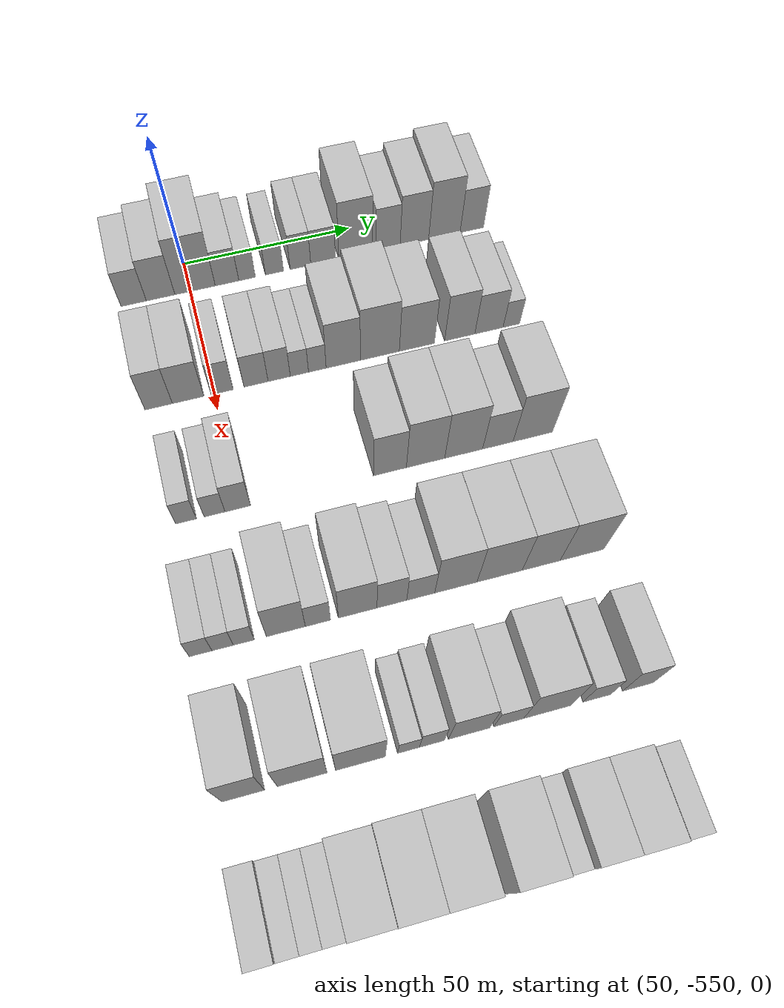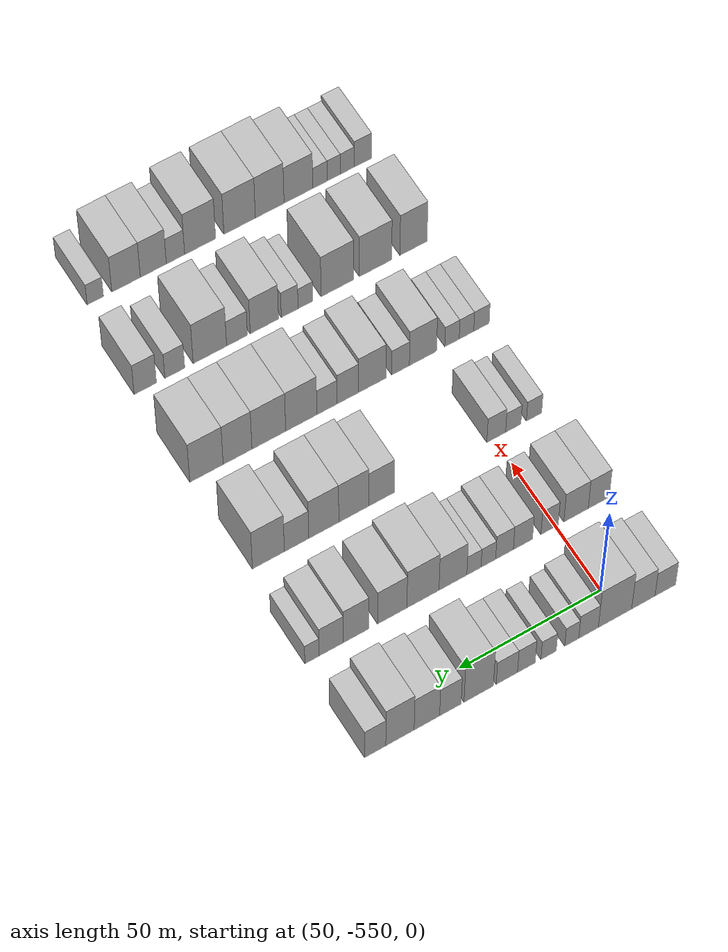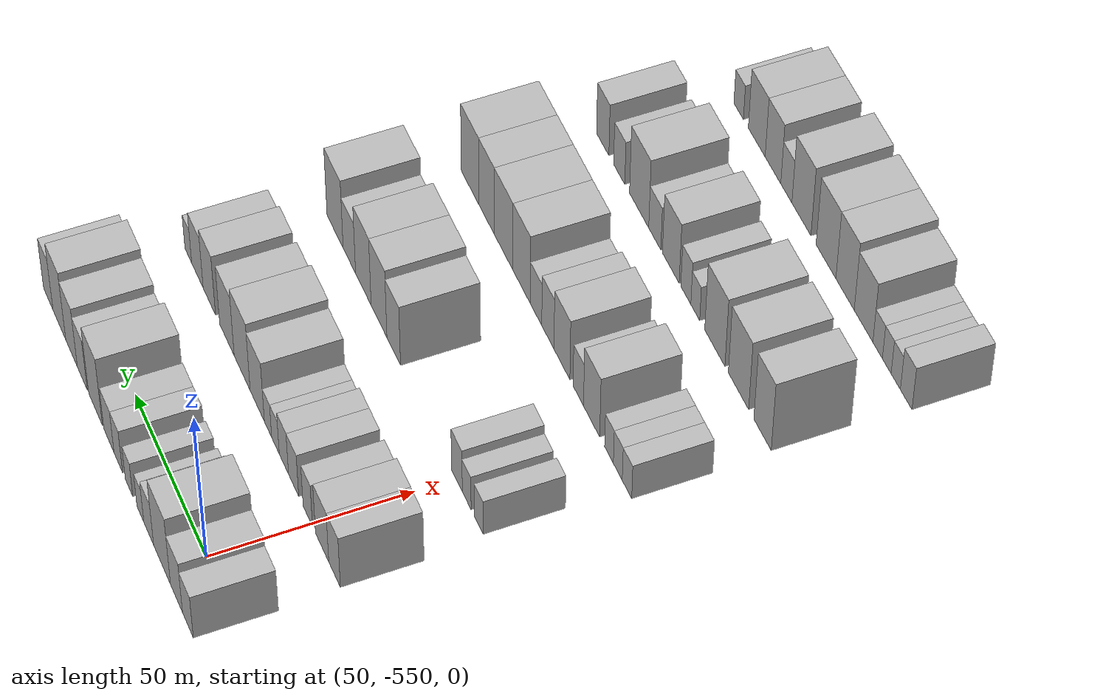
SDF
<sdf version="1.6">
 <world name="default">
  <model name="building_1">
   <static>1</static>
   <pose>50.0000 -566.3373 0 0.000000 0.000000 0.000000</pose>
   <link name="link">
    <pose>0 0 7.50 0 0 0</pose>
    <collision name="collision"><geometry><box><size>20.0000 7.3254 15.0000</size></box></geometry></collision>
    <visual name="visual">
     <cast_shadows>0</cast_shadows>
     <geometry><box><size>20.0000 7.3254 15.0000</size></box></geometry>
     <material>
      <script>
       <uri>model://HANNAS_wall/materials/scripts</uri>
       <uri>model://HANNAS_wall/materials/textures</uri>
       <name>vrc/HANNAS_wall</name>
      </script>
     </material>
    </visual>
   </link>
  </model>
  <model name="building_2">
   <static>1</static>
   <pose>50.0000 -558.5314 0 0.000000 0.000000 0.000000</pose>
   <link name="link">
    <pose>0 0 9.00 0 0 0</pose>
    <collision name="collision"><geometry><box><size>20.0000 8.2865 18.0000</size></box></geometry></collision>
    <visual name="visual">
     <cast_shadows>0</cast_shadows>
     <geometry><box><size>20.0000 8.2865 18.0000</size></box></geometry>
     <material>
      <script>
       <uri>model://HANNAS_wall/materials/scripts</uri>
       <uri>model://HANNAS_wall/materials/textures</uri>
       <name>vrc/HANNAS_wall</name>
      </script>
     </material>
    </visual>
   </link>
  </model>
  <model name="building_3">
   <static>1</static>
   <pose>50.0000 -548.4884 0 0.000000 0.000000 0.000000</pose>
   <link name="link">
    <pose>0 0 12.00 0 0 0</pose>
    <collision name="collision"><geometry><box><size>20.0000 11.7996 24.0000</size></box></geometry></collision>
    <visual name="visual">
     <cast_shadows>0</cast_shadows>
     <geometry><box><size>20.0000 11.7996 24.0000</size></box></geometry>
     <material>
      <script>
       <uri>model://HANNAS_wall/materials/scripts</uri>
       <uri>model://HANNAS_wall/materials/textures</uri>
       <name>vrc/HANNAS_wall</name>
      </script>
     </material>
    </visual>
   </link>
  </model>
  <model name="building_4">
   <static>1</static>
   <pose>50.0000 -539.1193 0 0.000000 0.000000 0.000000</pose>
   <link name="link">
    <pose>0 0 7.50 0 0 0</pose>
    <collision name="collision"><geometry><box><size>20.0000 6.9386 15.0000</size></box></geometry></collision>
    <visual name="visual">
     <cast_shadows>0</cast_shadows>
     <geometry><box><size>20.0000 6.9386 15.0000</size></box></geometry>
     <material>
      <script>
       <uri>model://HANNAS_wall/materials/scripts</uri>
       <uri>model://HANNAS_wall/materials/textures</uri>
       <name>vrc/HANNAS_wall</name>
      </script>
     </material>
    </visual>
   </link>
  </model>
  <model name="building_5">
   <static>1</static>
   <pose>50.0000 -533.2011 0 0.000000 0.000000 0.000000</pose>
   <link name="link">
    <pose>0 0 6.00 0 0 0</pose>
    <collision name="collision"><geometry><box><size>20.0000 4.8977 12.0000</size></box></geometry></collision>
    <visual name="visual">
     <cast_shadows>0</cast_shadows>
     <geometry><box><size>20.0000 4.8977 12.0000</size></box></geometry>
     <material>
      <script>
       <uri>model://HANNAS_wall/materials/scripts</uri>
       <uri>model://HANNAS_wall/materials/textures</uri>
       <name>vrc/HANNAS_wall</name>
      </script>
     </material>
    </visual>
   </link>
  </model>
  <model name="building_6">
   <static>1</static>
   <pose>50.0000 -525.0686 0 0.000000 0.000000 0.000000</pose>
   <link name="link">
    <pose>0 0 6.00 0 0 0</pose>
    <collision name="collision"><geometry><box><size>20.0000 5.3672 12.0000</size></box></geometry></collision>
    <visual name="visual">
     <cast_shadows>0</cast_shadows>
     <geometry><box><size>20.0000 5.3672 12.0000</size></box></geometry>
     <material>
      <script>
       <uri>model://HANNAS_wall/materials/scripts</uri>
       <uri>model://HANNAS_wall/materials/textures</uri>
       <name>vrc/HANNAS_wall</name>
      </script>
     </material>
    </visual>
   </link>
  </model>
  <model name="building_7">
   <static>1</static>
   <pose>50.0000 -517.2954 0 0.000000 0.000000 0.000000</pose>
   <link name="link">
    <pose>0 0 7.50 0 0 0</pose>
    <collision name="collision"><geometry><box><size>20.0000 6.1791 15.0000</size></box></geometry></collision>
    <visual name="visual">
     <cast_shadows>0</cast_shadows>
     <geometry><box><size>20.0000 6.1791 15.0000</size></box></geometry>
     <material>
      <script>
       <uri>model://HANNAS_wall/materials/scripts</uri>
       <uri>model://HANNAS_wall/materials/textures</uri>
       <name>vrc/HANNAS_wall</name>
      </script>
     </material>
    </visual>
   </link>
  </model>
  <model name="building_8">
   <static>1</static>
   <pose>50.0000 -510.4935 0 0.000000 0.000000 0.000000</pose>
   <link name="link">
    <pose>0 0 7.50 0 0 0</pose>
    <collision name="collision"><geometry><box><size>20.0000 7.4247 15.0000</size></box></geometry></collision>
    <visual name="visual">
     <cast_shadows>0</cast_shadows>
     <geometry><box><size>20.0000 7.4247 15.0000</size></box></geometry>
     <material>
      <script>
       <uri>model://HANNAS_wall/materials/scripts</uri>
       <uri>model://HANNAS_wall/materials/textures</uri>
       <name>vrc/HANNAS_wall</name>
      </script>
     </material>
    </visual>
   </link>
  </model>
  <model name="building_9">
   <static>1</static>
   <pose>50.0000 -500.6763 0 0.000000 0.000000 0.000000</pose>
   <link name="link">
    <pose>0 0 12.00 0 0 0</pose>
    <collision name="collision"><geometry><box><size>20.0000 10.2097 24.0000</size></box></geometry></collision>
    <visual name="visual">
     <cast_shadows>0</cast_shadows>
     <geometry><box><size>20.0000 10.2097 24.0000</size></box></geometry>
     <material>
      <script>
       <uri>model://HANNAS_wall/materials/scripts</uri>
       <uri>model://HANNAS_wall/materials/textures</uri>
       <name>vrc/HANNAS_wall</name>
      </script>
     </material>
    </visual>
   </link>
  </model>
  <model name="building_10">
   <static>1</static>
   <pose>50.0000 -490.8525 0 0.000000 0.000000 0.000000</pose>
   <link name="link">
    <pose>0 0 9.00 0 0 0</pose>
    <collision name="collision"><geometry><box><size>20.0000 7.4378 18.0000</size></box></geometry></collision>
    <visual name="visual">
     <cast_shadows>0</cast_shadows>
     <geometry><box><size>20.0000 7.4378 18.0000</size></box></geometry>
     <material>
      <script>
       <uri>model://HANNAS_wall/materials/scripts</uri>
       <uri>model://HANNAS_wall/materials/textures</uri>
       <name>vrc/HANNAS_wall</name>
      </script>
     </material>
    </visual>
   </link>
  </model>
  <model name="building_11">
   <static>1</static>
   <pose>50.0000 -482.7396 0 0.000000 0.000000 0.000000</pose>
   <link name="link">
    <pose>0 0 10.50 0 0 0</pose>
    <collision name="collision"><geometry><box><size>20.0000 8.7881 21.0000</size></box></geometry></collision>
    <visual name="visual">
     <cast_shadows>0</cast_shadows>
     <geometry><box><size>20.0000 8.7881 21.0000</size></box></geometry>
     <material>
      <script>
       <uri>model://HANNAS_wall/materials/scripts</uri>
       <uri>model://HANNAS_wall/materials/textures</uri>
       <name>vrc/HANNAS_wall</name>
      </script>
     </material>
    </visual>
   </link>
  </model>
  <model name="building_12">
   <static>1</static>
   <pose>50.0000 -473.4747 0 0.000000 0.000000 0.000000</pose>
   <link name="link">
    <pose>0 0 12.00 0 0 0</pose>
    <collision name="collision"><geometry><box><size>20.0000 9.7416 24.0000</size></box></geometry></collision>
    <visual name="visual">
     <cast_shadows>0</cast_shadows>
     <geometry><box><size>20.0000 9.7416 24.0000</size></box></geometry>
     <material>
      <script>
       <uri>model://HANNAS_wall/materials/scripts</uri>
       <uri>model://HANNAS_wall/materials/textures</uri>
       <name>vrc/HANNAS_wall</name>
      </script>
     </material>
    </visual>
   </link>
  </model>
  <model name="building_13">
   <static>1</static>
   <pose>50.0000 -464.9641 0 0.000000 0.000000 0.000000</pose>
   <link name="link">
    <pose>0 0 9.00 0 0 0</pose>
    <collision name="collision"><geometry><box><size>20.0000 7.2798 18.0000</size></box></geometry></collision>
    <visual name="visual">
     <cast_shadows>0</cast_shadows>
     <geometry><box><size>20.0000 7.2798 18.0000</size></box></geometry>
     <material>
      <script>
       <uri>model://HANNAS_wall/materials/scripts</uri>
       <uri>model://HANNAS_wall/materials/textures</uri>
       <name>vrc/HANNAS_wall</name>
      </script>
     </material>
    </visual>
   </link>
  </model>
  <model name="building_135">
   <static>1</static>
   <pose>85.0000 -565.2305 0 0.000000 0.000000 0.000000</pose>
   <link name="link">
    <pose>0 0 9.00 0 0 0</pose>
    <collision name="collision"><geometry><box><size>20.0000 7.5390 18.0000</size></box></geometry></collision>
    <visual name="visual">
     <cast_shadows>0</cast_shadows>
     <geometry><box><size>20.0000 7.5390 18.0000</size></box></geometry>
     <material>
      <script>
       <uri>model://HANNAS_wall/materials/scripts</uri>
       <uri>model://HANNAS_wall/materials/textures</uri>
       <name>vrc/HANNAS_wall</name>
      </script>
     </material>
    </visual>
   </link>
  </model>
  <model name="building_136">
   <static>1</static>
   <pose>85.0000 -557.0987 0 0.000000 0.000000 0.000000</pose>
   <link name="link">
    <pose>0 0 9.00 0 0 0</pose>
    <collision name="collision"><geometry><box><size>20.0000 8.7245 18.0000</size></box></geometry></collision>
    <visual name="visual">
     <cast_shadows>0</cast_shadows>
     <geometry><box><size>20.0000 8.7245 18.0000</size></box></geometry>
     <material>
      <script>
       <uri>model://HANNAS_wall/materials/scripts</uri>
       <uri>model://HANNAS_wall/materials/textures</uri>
       <name>vrc/HANNAS_wall</name>
      </script>
     </material>
    </visual>
   </link>
  </model>
  <model name="building_137">
   <static>1</static>
   <pose>85.0000 -547.6555 0 0.000000 0.000000 0.000000</pose>
   <link name="link">
    <pose>0 0 7.50 0 0 0</pose>
    <collision name="collision"><geometry><box><size>20.0000 6.1619 15.0000</size></box></geometry></collision>
    <visual name="visual">
     <cast_shadows>0</cast_shadows>
     <geometry><box><size>20.0000 6.1619 15.0000</size></box></geometry>
     <material>
      <script>
       <uri>model://HANNAS_wall/materials/scripts</uri>
       <uri>model://HANNAS_wall/materials/textures</uri>
       <name>vrc/HANNAS_wall</name>
      </script>
     </material>
    </visual>
   </link>
  </model>
  <model name="building_138">
   <static>1</static>
   <pose>85.0000 -538.1790 0 0.000000 0.000000 0.000000</pose>
   <link name="link">
    <pose>0 0 7.50 0 0 0</pose>
    <collision name="collision"><geometry><box><size>20.0000 6.7912 15.0000</size></box></geometry></collision>
    <visual name="visual">
     <cast_shadows>0</cast_shadows>
     <geometry><box><size>20.0000 6.7912 15.0000</size></box></geometry>
     <material>
      <script>
       <uri>model://HANNAS_wall/materials/scripts</uri>
       <uri>model://HANNAS_wall/materials/textures</uri>
       <name>vrc/HANNAS_wall</name>
      </script>
     </material>
    </visual>
   </link>
  </model>
  <model name="building_139">
   <static>1</static>
   <pose>85.0000 -531.6476 0 0.000000 0.000000 0.000000</pose>
   <link name="link">
    <pose>0 0 7.50 0 0 0</pose>
    <collision name="collision"><geometry><box><size>20.0000 6.2715 15.0000</size></box></geometry></collision>
    <visual name="visual">
     <cast_shadows>0</cast_shadows>
     <geometry><box><size>20.0000 6.2715 15.0000</size></box></geometry>
     <material>
      <script>
       <uri>model://HANNAS_wall/materials/scripts</uri>
       <uri>model://HANNAS_wall/materials/textures</uri>
       <name>vrc/HANNAS_wall</name>
      </script>
     </material>
    </visual>
   </link>
  </model>
  <model name="building_140">
   <static>1</static>
   <pose>85.0000 -525.9291 0 0.000000 0.000000 0.000000</pose>
   <link name="link">
    <pose>0 0 6.00 0 0 0</pose>
    <collision name="collision"><geometry><box><size>20.0000 5.1656 12.0000</size></box></geometry></collision>
    <visual name="visual">
     <cast_shadows>0</cast_shadows>
     <geometry><box><size>20.0000 5.1656 12.0000</size></box></geometry>
     <material>
      <script>
       <uri>model://HANNAS_wall/materials/scripts</uri>
       <uri>model://HANNAS_wall/materials/textures</uri>
       <name>vrc/HANNAS_wall</name>
      </script>
     </material>
    </visual>
   </link>
  </model>
  <model name="building_141">
   <static>1</static>
   <pose>85.0000 -520.8363 0 0.000000 0.000000 0.000000</pose>
   <link name="link">
    <pose>0 0 6.00 0 0 0</pose>
    <collision name="collision"><geometry><box><size>20.0000 5.0199 12.0000</size></box></geometry></collision>
    <visual name="visual">
     <cast_shadows>0</cast_shadows>
     <geometry><box><size>20.0000 5.0199 12.0000</size></box></geometry>
     <material>
      <script>
       <uri>model://HANNAS_wall/materials/scripts</uri>
       <uri>model://HANNAS_wall/materials/textures</uri>
       <name>vrc/HANNAS_wall</name>
      </script>
     </material>
    </visual>
   </link>
  </model>
  <model name="building_142">
   <static>1</static>
   <pose>85.0000 -513.4286 0 0.000000 0.000000 0.000000</pose>
   <link name="link">
    <pose>0 0 10.50 0 0 0</pose>
    <collision name="collision"><geometry><box><size>20.0000 9.7955 21.0000</size></box></geometry></collision>
    <visual name="visual">
     <cast_shadows>0</cast_shadows>
     <geometry><box><size>20.0000 9.7955 21.0000</size></box></geometry>
     <material>
      <script>
       <uri>model://HANNAS_wall/materials/scripts</uri>
       <uri>model://HANNAS_wall/materials/textures</uri>
       <name>vrc/HANNAS_wall</name>
      </script>
     </material>
    </visual>
   </link>
  </model>
  <model name="building_143">
   <static>1</static>
   <pose>85.0000 -502.9109 0 0.000000 0.000000 0.000000</pose>
   <link name="link">
    <pose>0 0 12.00 0 0 0</pose>
    <collision name="collision"><geometry><box><size>20.0000 11.2398 24.0000</size></box></geometry></collision>
    <visual name="visual">
     <cast_shadows>0</cast_shadows>
     <geometry><box><size>20.0000 11.2398 24.0000</size></box></geometry>
     <material>
      <script>
       <uri>model://HANNAS_wall/materials/scripts</uri>
       <uri>model://HANNAS_wall/materials/textures</uri>
       <name>vrc/HANNAS_wall</name>
      </script>
     </material>
    </visual>
   </link>
  </model>
  <model name="building_144">
   <static>1</static>
   <pose>85.0000 -492.1735 0 0.000000 0.000000 0.000000</pose>
   <link name="link">
    <pose>0 0 10.50 0 0 0</pose>
    <collision name="collision"><geometry><box><size>20.0000 10.2351 21.0000</size></box></geometry></collision>
    <visual name="visual">
     <cast_shadows>0</cast_shadows>
     <geometry><box><size>20.0000 10.2351 21.0000</size></box></geometry>
     <material>
      <script>
       <uri>model://HANNAS_wall/materials/scripts</uri>
       <uri>model://HANNAS_wall/materials/textures</uri>
       <name>vrc/HANNAS_wall</name>
      </script>
     </material>
    </visual>
   </link>
  </model>
  <model name="building_145">
   <static>1</static>
   <pose>85.0000 -479.6143 0 0.000000 0.000000 0.000000</pose>
   <link name="link">
    <pose>0 0 10.50 0 0 0</pose>
    <collision name="collision"><geometry><box><size>20.0000 8.8833 21.0000</size></box></geometry></collision>
    <visual name="visual">
     <cast_shadows>0</cast_shadows>
     <geometry><box><size>20.0000 8.8833 21.0000</size></box></geometry>
     <material>
      <script>
       <uri>model://HANNAS_wall/materials/scripts</uri>
       <uri>model://HANNAS_wall/materials/textures</uri>
       <name>vrc/HANNAS_wall</name>
      </script>
     </material>
    </visual>
   </link>
  </model>
  <model name="building_146">
   <static>1</static>
   <pose>85.0000 -470.9877 0 0.000000 0.000000 0.000000</pose>
   <link name="link">
    <pose>0 0 9.00 0 0 0</pose>
    <collision name="collision"><geometry><box><size>20.0000 8.3699 18.0000</size></box></geometry></collision>
    <visual name="visual">
     <cast_shadows>0</cast_shadows>
     <geometry><box><size>20.0000 8.3699 18.0000</size></box></geometry>
     <material>
      <script>
       <uri>model://HANNAS_wall/materials/scripts</uri>
       <uri>model://HANNAS_wall/materials/textures</uri>
       <name>vrc/HANNAS_wall</name>
      </script>
     </material>
    </visual>
   </link>
  </model>
  <model name="building_147">
   <static>1</static>
   <pose>85.0000 -464.3508 0 0.000000 0.000000 0.000000</pose>
   <link name="link">
    <pose>0 0 6.00 0 0 0</pose>
    <collision name="collision"><geometry><box><size>20.0000 4.9038 12.0000</size></box></geometry></collision>
    <visual name="visual">
     <cast_shadows>0</cast_shadows>
     <geometry><box><size>20.0000 4.9038 12.0000</size></box></geometry>
     <material>
      <script>
       <uri>model://HANNAS_wall/materials/scripts</uri>
       <uri>model://HANNAS_wall/materials/textures</uri>
       <name>vrc/HANNAS_wall</name>
      </script>
     </material>
    </visual>
   </link>
  </model>
  <model name="building_261">
   <static>1</static>
   <pose>120.0000 -564.2588 0 0.000000 0.000000 0.000000</pose>
   <link name="link">
    <pose>0 0 6.00 0 0 0</pose>
    <collision name="collision"><geometry><box><size>20.0000 5.4824 12.0000</size></box></geometry></collision>
    <visual name="visual">
     <cast_shadows>0</cast_shadows>
     <geometry><box><size>20.0000 5.4824 12.0000</size></box></geometry>
     <material>
      <script>
       <uri>model://HANNAS_wall/materials/scripts</uri>
       <uri>model://HANNAS_wall/materials/textures</uri>
       <name>vrc/HANNAS_wall</name>
      </script>
     </material>
    </visual>
   </link>
  </model>
  <model name="building_262">
   <static>1</static>
   <pose>120.0000 -556.7733 0 0.000000 0.000000 0.000000</pose>
   <link name="link">
    <pose>0 0 6.00 0 0 0</pose>
    <collision name="collision"><geometry><box><size>20.0000 5.4885 12.0000</size></box></geometry></collision>
    <visual name="visual">
     <cast_shadows>0</cast_shadows>
     <geometry><box><size>20.0000 5.4885 12.0000</size></box></geometry>
     <material>
      <script>
       <uri>model://HANNAS_wall/materials/scripts</uri>
       <uri>model://HANNAS_wall/materials/textures</uri>
       <name>vrc/HANNAS_wall</name>
      </script>
     </material>
    </visual>
   </link>
  </model>
  <model name="building_263">
   <static>1</static>
   <pose>120.0000 -550.6512 0 0.000000 0.000000 0.000000</pose>
   <link name="link">
    <pose>0 0 7.50 0 0 0</pose>
    <collision name="collision"><geometry><box><size>20.0000 6.7558 15.0000</size></box></geometry></collision>
    <visual name="visual">
     <cast_shadows>0</cast_shadows>
     <geometry><box><size>20.0000 6.7558 15.0000</size></box></geometry>
     <material>
      <script>
       <uri>model://HANNAS_wall/materials/scripts</uri>
       <uri>model://HANNAS_wall/materials/textures</uri>
       <name>vrc/HANNAS_wall</name>
      </script>
     </material>
    </visual>
   </link>
  </model>
  <model name="building_264">
   <static>1</static>
   <pose>120.0000 -509.7703 0 0.000000 0.000000 0.000000</pose>
   <link name="link">
    <pose>0 0 10.50 0 0 0</pose>
    <collision name="collision"><geometry><box><size>20.0000 9.0020 21.0000</size></box></geometry></collision>
    <visual name="visual">
     <cast_shadows>0</cast_shadows>
     <geometry><box><size>20.0000 9.0020 21.0000</size></box></geometry>
     <material>
      <script>
       <uri>model://HANNAS_wall/materials/scripts</uri>
       <uri>model://HANNAS_wall/materials/textures</uri>
       <name>vrc/HANNAS_wall</name>
      </script>
     </material>
    </visual>
   </link>
  </model>
  <model name="building_265">
   <static>1</static>
   <pose>120.0000 -499.9883 0 0.000000 0.000000 0.000000</pose>
   <link name="link">
    <pose>0 0 12.00 0 0 0</pose>
    <collision name="collision"><geometry><box><size>20.0000 10.5619 24.0000</size></box></geometry></collision>
    <visual name="visual">
     <cast_shadows>0</cast_shadows>
     <geometry><box><size>20.0000 10.5619 24.0000</size></box></geometry>
     <material>
      <script>
       <uri>model://HANNAS_wall/materials/scripts</uri>
       <uri>model://HANNAS_wall/materials/textures</uri>
       <name>vrc/HANNAS_wall</name>
      </script>
     </material>
    </visual>
   </link>
  </model>
  <model name="building_266">
   <static>1</static>
   <pose>120.0000 -489.4354 0 0.000000 0.000000 0.000000</pose>
   <link name="link">
    <pose>0 0 12.00 0 0 0</pose>
    <collision name="collision"><geometry><box><size>20.0000 10.5440 24.0000</size></box></geometry></collision>
    <visual name="visual">
     <cast_shadows>0</cast_shadows>
     <geometry><box><size>20.0000 10.5440 24.0000</size></box></geometry>
     <material>
      <script>
       <uri>model://HANNAS_wall/materials/scripts</uri>
       <uri>model://HANNAS_wall/materials/textures</uri>
       <name>vrc/HANNAS_wall</name>
      </script>
     </material>
    </visual>
   </link>
  </model>
  <model name="building_267">
   <static>1</static>
   <pose>120.0000 -479.9013 0 0.000000 0.000000 0.000000</pose>
   <link name="link">
    <pose>0 0 9.00 0 0 0</pose>
    <collision name="collision"><geometry><box><size>20.0000 8.5242 18.0000</size></box></geometry></collision>
    <visual name="visual">
     <cast_shadows>0</cast_shadows>
     <geometry><box><size>20.0000 8.5242 18.0000</size></box></geometry>
     <material>
      <script>
       <uri>model://HANNAS_wall/materials/scripts</uri>
       <uri>model://HANNAS_wall/materials/textures</uri>
       <name>vrc/HANNAS_wall</name>
      </script>
     </material>
    </visual>
   </link>
  </model>
  <model name="building_268">
   <static>1</static>
   <pose>120.0000 -470.0726 0 0.000000 0.000000 0.000000</pose>
   <link name="link">
    <pose>0 0 12.00 0 0 0</pose>
    <collision name="collision"><geometry><box><size>20.0000 11.1332 24.0000</size></box></geometry></collision>
    <visual name="visual">
     <cast_shadows>0</cast_shadows>
     <geometry><box><size>20.0000 11.1332 24.0000</size></box></geometry>
     <material>
      <script>
       <uri>model://HANNAS_wall/materials/scripts</uri>
       <uri>model://HANNAS_wall/materials/textures</uri>
       <name>vrc/HANNAS_wall</name>
      </script>
     </material>
    </visual>
   </link>
  </model>
  <model name="building_369">
   <static>1</static>
   <pose>155.0000 -567.1907 0 0.000000 0.000000 0.000000</pose>
   <link name="link">
    <pose>0 0 6.00 0 0 0</pose>
    <collision name="collision"><geometry><box><size>20.0000 5.6186 12.0000</size></box></geometry></collision>
    <visual name="visual">
     <cast_shadows>0</cast_shadows>
     <geometry><box><size>20.0000 5.6186 12.0000</size></box></geometry>
     <material>
      <script>
       <uri>model://HANNAS_wall/materials/scripts</uri>
       <uri>model://HANNAS_wall/materials/textures</uri>
       <name>vrc/HANNAS_wall</name>
      </script>
     </material>
    </visual>
   </link>
  </model>
  <model name="building_370">
   <static>1</static>
   <pose>155.0000 -561.7479 0 0.000000 0.000000 0.000000</pose>
   <link name="link">
    <pose>0 0 6.00 0 0 0</pose>
    <collision name="collision"><geometry><box><size>20.0000 5.2669 12.0000</size></box></geometry></collision>
    <visual name="visual">
     <cast_shadows>0</cast_shadows>
     <geometry><box><size>20.0000 5.2669 12.0000</size></box></geometry>
     <material>
      <script>
       <uri>model://HANNAS_wall/materials/scripts</uri>
       <uri>model://HANNAS_wall/materials/textures</uri>
       <name>vrc/HANNAS_wall</name>
      </script>
     </material>
    </visual>
   </link>
  </model>
  <model name="building_371">
   <static>1</static>
   <pose>155.0000 -556.4995 0 0.000000 0.000000 0.000000</pose>
   <link name="link">
    <pose>0 0 6.00 0 0 0</pose>
    <collision name="collision"><geometry><box><size>20.0000 5.2298 12.0000</size></box></geometry></collision>
    <visual name="visual">
     <cast_shadows>0</cast_shadows>
     <geometry><box><size>20.0000 5.2298 12.0000</size></box></geometry>
     <material>
      <script>
       <uri>model://HANNAS_wall/materials/scripts</uri>
       <uri>model://HANNAS_wall/materials/textures</uri>
       <name>vrc/HANNAS_wall</name>
      </script>
     </material>
    </visual>
   </link>
  </model>
  <model name="building_372">
   <static>1</static>
   <pose>155.0000 -545.9848 0 0.000000 0.000000 0.000000</pose>
   <link name="link">
    <pose>0 0 10.50 0 0 0</pose>
    <collision name="collision"><geometry><box><size>20.0000 9.7998 21.0000</size></box></geometry></collision>
    <visual name="visual">
     <cast_shadows>0</cast_shadows>
     <geometry><box><size>20.0000 9.7998 21.0000</size></box></geometry>
     <material>
      <script>
       <uri>model://HANNAS_wall/materials/scripts</uri>
       <uri>model://HANNAS_wall/materials/textures</uri>
       <name>vrc/HANNAS_wall</name>
      </script>
     </material>
    </visual>
   </link>
  </model>
  <model name="building_373">
   <static>1</static>
   <pose>155.0000 -537.9001 0 0.000000 0.000000 0.000000</pose>
   <link name="link">
    <pose>0 0 7.50 0 0 0</pose>
    <collision name="collision"><geometry><box><size>20.0000 6.3696 15.0000</size></box></geometry></collision>
    <visual name="visual">
     <cast_shadows>0</cast_shadows>
     <geometry><box><size>20.0000 6.3696 15.0000</size></box></geometry>
     <material>
      <script>
       <uri>model://HANNAS_wall/materials/scripts</uri>
       <uri>model://HANNAS_wall/materials/textures</uri>
       <name>vrc/HANNAS_wall</name>
      </script>
     </material>
    </visual>
   </link>
  </model>
  <model name="building_374">
   <static>1</static>
   <pose>155.0000 -527.8080 0 0.000000 0.000000 0.000000</pose>
   <link name="link">
    <pose>0 0 10.50 0 0 0</pose>
    <collision name="collision"><geometry><box><size>20.0000 9.8146 21.0000</size></box></geometry></collision>
    <visual name="visual">
     <cast_shadows>0</cast_shadows>
     <geometry><box><size>20.0000 9.8146 21.0000</size></box></geometry>
     <material>
      <script>
       <uri>model://HANNAS_wall/materials/scripts</uri>
       <uri>model://HANNAS_wall/materials/textures</uri>
       <name>vrc/HANNAS_wall</name>
      </script>
     </material>
    </visual>
   </link>
  </model>
  <model name="building_375">
   <static>1</static>
   <pose>155.0000 -519.0621 0 0.000000 0.000000 0.000000</pose>
   <link name="link">
    <pose>0 0 9.00 0 0 0</pose>
    <collision name="collision"><geometry><box><size>20.0000 7.6772 18.0000</size></box></geometry></collision>
    <visual name="visual">
     <cast_shadows>0</cast_shadows>
     <geometry><box><size>20.0000 7.6772 18.0000</size></box></geometry>
     <material>
      <script>
       <uri>model://HANNAS_wall/materials/scripts</uri>
       <uri>model://HANNAS_wall/materials/textures</uri>
       <name>vrc/HANNAS_wall</name>
      </script>
     </material>
    </visual>
   </link>
  </model>
  <model name="building_376">
   <static>1</static>
   <pose>155.0000 -511.6010 0 0.000000 0.000000 0.000000</pose>
   <link name="link">
    <pose>0 0 7.50 0 0 0</pose>
    <collision name="collision"><geometry><box><size>20.0000 7.2450 15.0000</size></box></geometry></collision>
    <visual name="visual">
     <cast_shadows>0</cast_shadows>
     <geometry><box><size>20.0000 7.2450 15.0000</size></box></geometry>
     <material>
      <script>
       <uri>model://HANNAS_wall/materials/scripts</uri>
       <uri>model://HANNAS_wall/materials/textures</uri>
       <name>vrc/HANNAS_wall</name>
      </script>
     </material>
    </visual>
   </link>
  </model>
  <model name="building_377">
   <static>1</static>
   <pose>155.0000 -502.4452 0 0.000000 0.000000 0.000000</pose>
   <link name="link">
    <pose>0 0 12.00 0 0 0</pose>
    <collision name="collision"><geometry><box><size>20.0000 11.0667 24.0000</size></box></geometry></collision>
    <visual name="visual">
     <cast_shadows>0</cast_shadows>
     <geometry><box><size>20.0000 11.0667 24.0000</size></box></geometry>
     <material>
      <script>
       <uri>model://HANNAS_wall/materials/scripts</uri>
       <uri>model://HANNAS_wall/materials/textures</uri>
       <name>vrc/HANNAS_wall</name>
      </script>
     </material>
    </visual>
   </link>
  </model>
  <model name="building_378">
   <static>1</static>
   <pose>155.0000 -490.9477 0 0.000000 0.000000 0.000000</pose>
   <link name="link">
    <pose>0 0 12.00 0 0 0</pose>
    <collision name="collision"><geometry><box><size>20.0000 11.9281 24.0000</size></box></geometry></collision>
    <visual name="visual">
     <cast_shadows>0</cast_shadows>
     <geometry><box><size>20.0000 11.9281 24.0000</size></box></geometry>
     <material>
      <script>
       <uri>model://HANNAS_wall/materials/scripts</uri>
       <uri>model://HANNAS_wall/materials/textures</uri>
       <name>vrc/HANNAS_wall</name>
      </script>
     </material>
    </visual>
   </link>
  </model>
  <model name="building_379">
   <static>1</static>
   <pose>155.0000 -479.9156 0 0.000000 0.000000 0.000000</pose>
   <link name="link">
    <pose>0 0 12.00 0 0 0</pose>
    <collision name="collision"><geometry><box><size>20.0000 10.1362 24.0000</size></box></geometry></collision>
    <visual name="visual">
     <cast_shadows>0</cast_shadows>
     <geometry><box><size>20.0000 10.1362 24.0000</size></box></geometry>
     <material>
      <script>
       <uri>model://HANNAS_wall/materials/scripts</uri>
       <uri>model://HANNAS_wall/materials/textures</uri>
       <name>vrc/HANNAS_wall</name>
      </script>
     </material>
    </visual>
   </link>
  </model>
  <model name="building_380">
   <static>1</static>
   <pose>155.0000 -468.9989 0 0.000000 0.000000 0.000000</pose>
   <link name="link">
    <pose>0 0 12.00 0 0 0</pose>
    <collision name="collision"><geometry><box><size>20.0000 11.6973 24.0000</size></box></geometry></collision>
    <visual name="visual">
     <cast_shadows>0</cast_shadows>
     <geometry><box><size>20.0000 11.6973 24.0000</size></box></geometry>
     <material>
      <script>
       <uri>model://HANNAS_wall/materials/scripts</uri>
       <uri>model://HANNAS_wall/materials/textures</uri>
       <name>vrc/HANNAS_wall</name>
      </script>
     </material>
    </visual>
   </link>
  </model>
  <model name="building_493">
   <static>1</static>
   <pose>190.0000 -564.0429 0 0.000000 0.000000 0.000000</pose>
   <link name="link">
    <pose>0 0 12.00 0 0 0</pose>
    <collision name="collision"><geometry><box><size>20.0000 9.9141 24.0000</size></box></geometry></collision>
    <visual name="visual">
     <cast_shadows>0</cast_shadows>
     <geometry><box><size>20.0000 9.9141 24.0000</size></box></geometry>
     <material>
      <script>
       <uri>model://HANNAS_wall/materials/scripts</uri>
       <uri>model://HANNAS_wall/materials/textures</uri>
       <name>vrc/HANNAS_wall</name>
      </script>
     </material>
    </visual>
   </link>
  </model>
  <model name="building_494">
   <static>1</static>
   <pose>190.0000 -550.2127 0 0.000000 0.000000 0.000000</pose>
   <link name="link">
    <pose>0 0 12.00 0 0 0</pose>
    <collision name="collision"><geometry><box><size>20.0000 11.7462 24.0000</size></box></geometry></collision>
    <visual name="visual">
     <cast_shadows>0</cast_shadows>
     <geometry><box><size>20.0000 11.7462 24.0000</size></box></geometry>
     <material>
      <script>
       <uri>model://HANNAS_wall/materials/scripts</uri>
       <uri>model://HANNAS_wall/materials/textures</uri>
       <name>vrc/HANNAS_wall</name>
      </script>
     </material>
    </visual>
   </link>
  </model>
  <model name="building_495">
   <static>1</static>
   <pose>190.0000 -536.3950 0 0.000000 0.000000 0.000000</pose>
   <link name="link">
    <pose>0 0 12.00 0 0 0</pose>
    <collision name="collision"><geometry><box><size>20.0000 11.8893 24.0000</size></box></geometry></collision>
    <visual name="visual">
     <cast_shadows>0</cast_shadows>
     <geometry><box><size>20.0000 11.8893 24.0000</size></box></geometry>
     <material>
      <script>
       <uri>model://HANNAS_wall/materials/scripts</uri>
       <uri>model://HANNAS_wall/materials/textures</uri>
       <name>vrc/HANNAS_wall</name>
      </script>
     </material>
    </visual>
   </link>
  </model>
  <model name="building_496">
   <static>1</static>
   <pose>190.0000 -524.8042 0 0.000000 0.000000 0.000000</pose>
   <link name="link">
    <pose>0 0 6.00 0 0 0</pose>
    <collision name="collision"><geometry><box><size>20.0000 5.2923 12.0000</size></box></geometry></collision>
    <visual name="visual">
     <cast_shadows>0</cast_shadows>
     <geometry><box><size>20.0000 5.2923 12.0000</size></box></geometry>
     <material>
      <script>
       <uri>model://HANNAS_wall/materials/scripts</uri>
       <uri>model://HANNAS_wall/materials/textures</uri>
       <name>vrc/HANNAS_wall</name>
      </script>
     </material>
    </visual>
   </link>
  </model>
  <model name="building_497">
   <static>1</static>
   <pose>190.0000 -519.1438 0 0.000000 0.000000 0.000000</pose>
   <link name="link">
    <pose>0 0 7.50 0 0 0</pose>
    <collision name="collision"><geometry><box><size>20.0000 6.0285 15.0000</size></box></geometry></collision>
    <visual name="visual">
     <cast_shadows>0</cast_shadows>
     <geometry><box><size>20.0000 6.0285 15.0000</size></box></geometry>
     <material>
      <script>
       <uri>model://HANNAS_wall/materials/scripts</uri>
       <uri>model://HANNAS_wall/materials/textures</uri>
       <name>vrc/HANNAS_wall</name>
      </script>
     </material>
    </visual>
   </link>
  </model>
  <model name="building_498">
   <static>1</static>
   <pose>190.0000 -510.0468 0 0.000000 0.000000 0.000000</pose>
   <link name="link">
    <pose>0 0 10.50 0 0 0</pose>
    <collision name="collision"><geometry><box><size>20.0000 10.1655 21.0000</size></box></geometry></collision>
    <visual name="visual">
     <cast_shadows>0</cast_shadows>
     <geometry><box><size>20.0000 10.1655 21.0000</size></box></geometry>
     <material>
      <script>
       <uri>model://HANNAS_wall/materials/scripts</uri>
       <uri>model://HANNAS_wall/materials/textures</uri>
       <name>vrc/HANNAS_wall</name>
      </script>
     </material>
    </visual>
   </link>
  </model>
  <model name="building_499">
   <static>1</static>
   <pose>190.0000 -500.2547 0 0.000000 0.000000 0.000000</pose>
   <link name="link">
    <pose>0 0 7.50 0 0 0</pose>
    <collision name="collision"><geometry><box><size>20.0000 7.4187 15.0000</size></box></geometry></collision>
    <visual name="visual">
     <cast_shadows>0</cast_shadows>
     <geometry><box><size>20.0000 7.4187 15.0000</size></box></geometry>
     <material>
      <script>
       <uri>model://HANNAS_wall/materials/scripts</uri>
       <uri>model://HANNAS_wall/materials/textures</uri>
       <name>vrc/HANNAS_wall</name>
      </script>
     </material>
    </visual>
   </link>
  </model>
  <model name="building_500">
   <static>1</static>
   <pose>190.0000 -490.5932 0 0.000000 0.000000 0.000000</pose>
   <link name="link">
    <pose>0 0 12.00 0 0 0</pose>
    <collision name="collision"><geometry><box><size>20.0000 11.9044 24.0000</size></box></geometry></collision>
    <visual name="visual">
     <cast_shadows>0</cast_shadows>
     <geometry><box><size>20.0000 11.9044 24.0000</size></box></geometry>
     <material>
      <script>
       <uri>model://HANNAS_wall/materials/scripts</uri>
       <uri>model://HANNAS_wall/materials/textures</uri>
       <name>vrc/HANNAS_wall</name>
      </script>
     </material>
    </visual>
   </link>
  </model>
  <model name="building_501">
   <static>1</static>
   <pose>190.0000 -478.1282 0 0.000000 0.000000 0.000000</pose>
   <link name="link">
    <pose>0 0 7.50 0 0 0</pose>
    <collision name="collision"><geometry><box><size>20.0000 7.0255 15.0000</size></box></geometry></collision>
    <visual name="visual">
     <cast_shadows>0</cast_shadows>
     <geometry><box><size>20.0000 7.0255 15.0000</size></box></geometry>
     <material>
      <script>
       <uri>model://HANNAS_wall/materials/scripts</uri>
       <uri>model://HANNAS_wall/materials/textures</uri>
       <name>vrc/HANNAS_wall</name>
      </script>
     </material>
    </visual>
   </link>
  </model>
  <model name="building_502">
   <static>1</static>
   <pose>190.0000 -467.6867 0 0.000000 0.000000 0.000000</pose>
   <link name="link">
    <pose>0 0 9.00 0 0 0</pose>
    <collision name="collision"><geometry><box><size>20.0000 7.8575 18.0000</size></box></geometry></collision>
    <visual name="visual">
     <cast_shadows>0</cast_shadows>
     <geometry><box><size>20.0000 7.8575 18.0000</size></box></geometry>
     <material>
      <script>
       <uri>model://HANNAS_wall/materials/scripts</uri>
       <uri>model://HANNAS_wall/materials/textures</uri>
       <name>vrc/HANNAS_wall</name>
      </script>
     </material>
    </visual>
   </link>
  </model>
  <model name="building_618">
   <static>1</static>
   <pose>225.0000 -566.8201 0 0.000000 0.000000 0.000000</pose>
   <link name="link">
    <pose>0 0 7.50 0 0 0</pose>
    <collision name="collision"><geometry><box><size>20.0000 6.3597 15.0000</size></box></geometry></collision>
    <visual name="visual">
     <cast_shadows>0</cast_shadows>
     <geometry><box><size>20.0000 6.3597 15.0000</size></box></geometry>
     <material>
      <script>
       <uri>model://HANNAS_wall/materials/scripts</uri>
       <uri>model://HANNAS_wall/materials/textures</uri>
       <name>vrc/HANNAS_wall</name>
      </script>
     </material>
    </visual>
   </link>
  </model>
  <model name="building_619">
   <static>1</static>
   <pose>225.0000 -561.0902 0 0.000000 0.000000 0.000000</pose>
   <link name="link">
    <pose>0 0 6.00 0 0 0</pose>
    <collision name="collision"><geometry><box><size>20.0000 5.1002 12.0000</size></box></geometry></collision>
    <visual name="visual">
     <cast_shadows>0</cast_shadows>
     <geometry><box><size>20.0000 5.1002 12.0000</size></box></geometry>
     <material>
      <script>
       <uri>model://HANNAS_wall/materials/scripts</uri>
       <uri>model://HANNAS_wall/materials/textures</uri>
       <name>vrc/HANNAS_wall</name>
      </script>
     </material>
    </visual>
   </link>
  </model>
  <model name="building_620">
   <static>1</static>
   <pose>225.0000 -556.1253 0 0.000000 0.000000 0.000000</pose>
   <link name="link">
    <pose>0 0 6.00 0 0 0</pose>
    <collision name="collision"><geometry><box><size>20.0000 4.8295 12.0000</size></box></geometry></collision>
    <visual name="visual">
     <cast_shadows>0</cast_shadows>
     <geometry><box><size>20.0000 4.8295 12.0000</size></box></geometry>
     <material>
      <script>
       <uri>model://HANNAS_wall/materials/scripts</uri>
       <uri>model://HANNAS_wall/materials/textures</uri>
       <name>vrc/HANNAS_wall</name>
      </script>
     </material>
    </visual>
   </link>
  </model>
  <model name="building_621">
   <static>1</static>
   <pose>225.0000 -551.0589 0 0.000000 0.000000 0.000000</pose>
   <link name="link">
    <pose>0 0 6.00 0 0 0</pose>
    <collision name="collision"><geometry><box><size>20.0000 5.3033 12.0000</size></box></geometry></collision>
    <visual name="visual">
     <cast_shadows>0</cast_shadows>
     <geometry><box><size>20.0000 5.3033 12.0000</size></box></geometry>
     <material>
      <script>
       <uri>model://HANNAS_wall/materials/scripts</uri>
       <uri>model://HANNAS_wall/materials/textures</uri>
       <name>vrc/HANNAS_wall</name>
      </script>
     </material>
    </visual>
   </link>
  </model>
  <model name="building_622">
   <static>1</static>
   <pose>225.0000 -543.1594 0 0.000000 0.000000 0.000000</pose>
   <link name="link">
    <pose>0 0 10.50 0 0 0</pose>
    <collision name="collision"><geometry><box><size>20.0000 10.4957 21.0000</size></box></geometry></collision>
    <visual name="visual">
     <cast_shadows>0</cast_shadows>
     <geometry><box><size>20.0000 10.4957 21.0000</size></box></geometry>
     <material>
      <script>
       <uri>model://HANNAS_wall/materials/scripts</uri>
       <uri>model://HANNAS_wall/materials/textures</uri>
       <name>vrc/HANNAS_wall</name>
      </script>
     </material>
    </visual>
   </link>
  </model>
  <model name="building_623">
   <static>1</static>
   <pose>225.0000 -532.6872 0 0.000000 0.000000 0.000000</pose>
   <link name="link">
    <pose>0 0 12.00 0 0 0</pose>
    <collision name="collision"><geometry><box><size>20.0000 10.4487 24.0000</size></box></geometry></collision>
    <visual name="visual">
     <cast_shadows>0</cast_shadows>
     <geometry><box><size>20.0000 10.4487 24.0000</size></box></geometry>
     <material>
      <script>
       <uri>model://HANNAS_wall/materials/scripts</uri>
       <uri>model://HANNAS_wall/materials/textures</uri>
       <name>vrc/HANNAS_wall</name>
      </script>
     </material>
    </visual>
   </link>
  </model>
  <model name="building_624">
   <static>1</static>
   <pose>225.0000 -521.7587 0 0.000000 0.000000 0.000000</pose>
   <link name="link">
    <pose>0 0 12.00 0 0 0</pose>
    <collision name="collision"><geometry><box><size>20.0000 11.4082 24.0000</size></box></geometry></collision>
    <visual name="visual">
     <cast_shadows>0</cast_shadows>
     <geometry><box><size>20.0000 11.4082 24.0000</size></box></geometry>
     <material>
      <script>
       <uri>model://HANNAS_wall/materials/scripts</uri>
       <uri>model://HANNAS_wall/materials/textures</uri>
       <name>vrc/HANNAS_wall</name>
      </script>
     </material>
    </visual>
   </link>
  </model>
  <model name="building_625">
   <static>1</static>
   <pose>225.0000 -507.4702 0 0.000000 0.000000 0.000000</pose>
   <link name="link">
    <pose>0 0 12.00 0 0 0</pose>
    <collision name="collision"><geometry><box><size>20.0000 11.1689 24.0000</size></box></geometry></collision>
    <visual name="visual">
     <cast_shadows>0</cast_shadows>
     <geometry><box><size>20.0000 11.1689 24.0000</size></box></geometry>
     <material>
      <script>
       <uri>model://HANNAS_wall/materials/scripts</uri>
       <uri>model://HANNAS_wall/materials/textures</uri>
       <name>vrc/HANNAS_wall</name>
      </script>
     </material>
    </visual>
   </link>
  </model>
  <model name="building_626">
   <static>1</static>
   <pose>225.0000 -498.5899 0 0.000000 0.000000 0.000000</pose>
   <link name="link">
    <pose>0 0 7.50 0 0 0</pose>
    <collision name="collision"><geometry><box><size>20.0000 6.5917 15.0000</size></box></geometry></collision>
    <visual name="visual">
     <cast_shadows>0</cast_shadows>
     <geometry><box><size>20.0000 6.5917 15.0000</size></box></geometry>
     <material>
      <script>
       <uri>model://HANNAS_wall/materials/scripts</uri>
       <uri>model://HANNAS_wall/materials/textures</uri>
       <name>vrc/HANNAS_wall</name>
      </script>
     </material>
    </visual>
   </link>
  </model>
  <model name="building_627">
   <static>1</static>
   <pose>225.0000 -490.6335 0 0.000000 0.000000 0.000000</pose>
   <link name="link">
    <pose>0 0 10.50 0 0 0</pose>
    <collision name="collision"><geometry><box><size>20.0000 9.3210 21.0000</size></box></geometry></collision>
    <visual name="visual">
     <cast_shadows>0</cast_shadows>
     <geometry><box><size>20.0000 9.3210 21.0000</size></box></geometry>
     <material>
      <script>
       <uri>model://HANNAS_wall/materials/scripts</uri>
       <uri>model://HANNAS_wall/materials/textures</uri>
       <name>vrc/HANNAS_wall</name>
      </script>
     </material>
    </visual>
   </link>
  </model>
  <model name="building_628">
   <static>1</static>
   <pose>225.0000 -480.8935 0 0.000000 0.000000 0.000000</pose>
   <link name="link">
    <pose>0 0 10.50 0 0 0</pose>
    <collision name="collision"><geometry><box><size>20.0000 10.1591 21.0000</size></box></geometry></collision>
    <visual name="visual">
     <cast_shadows>0</cast_shadows>
     <geometry><box><size>20.0000 10.1591 21.0000</size></box></geometry>
     <material>
      <script>
       <uri>model://HANNAS_wall/materials/scripts</uri>
       <uri>model://HANNAS_wall/materials/textures</uri>
       <name>vrc/HANNAS_wall</name>
      </script>
     </material>
    </visual>
   </link>
  </model>
  <model name="building_629">
   <static>1</static>
   <pose>225.0000 -469.9077 0 0.000000 0.000000 0.000000</pose>
   <link name="link">
    <pose>0 0 6.00 0 0 0</pose>
    <collision name="collision"><geometry><box><size>20.0000 5.8124 12.0000</size></box></geometry></collision>
    <visual name="visual">
     <cast_shadows>0</cast_shadows>
     <geometry><box><size>20.0000 5.8124 12.0000</size></box></geometry>
     <material>
      <script>
       <uri>model://HANNAS_wall/materials/scripts</uri>
       <uri>model://HANNAS_wall/materials/textures</uri>
       <name>vrc/HANNAS_wall</name>
      </script>
     </material>
    </visual>
   </link>
  </model>
 </world>
</sdf>
